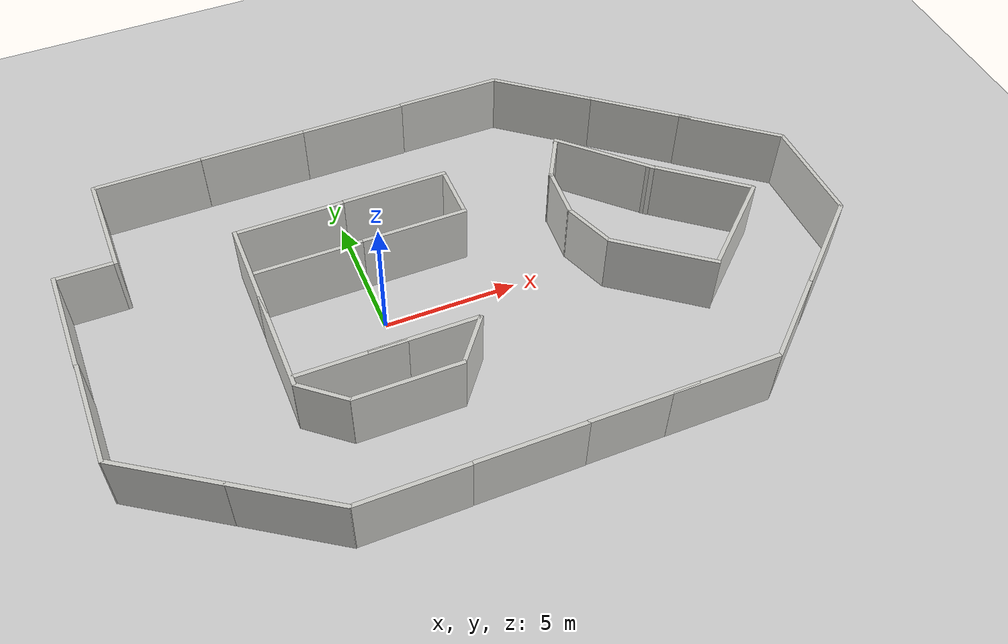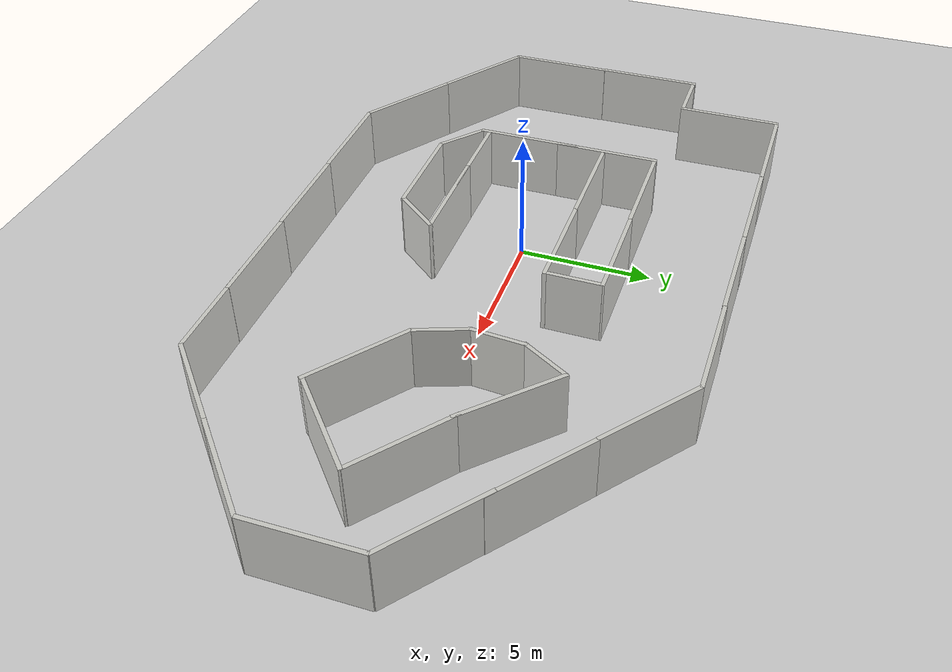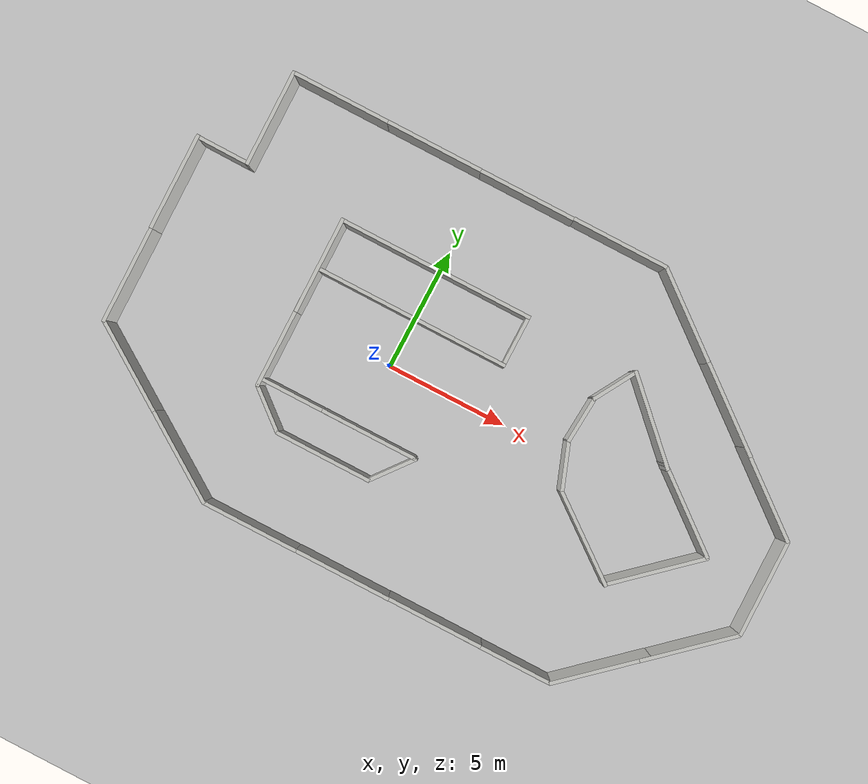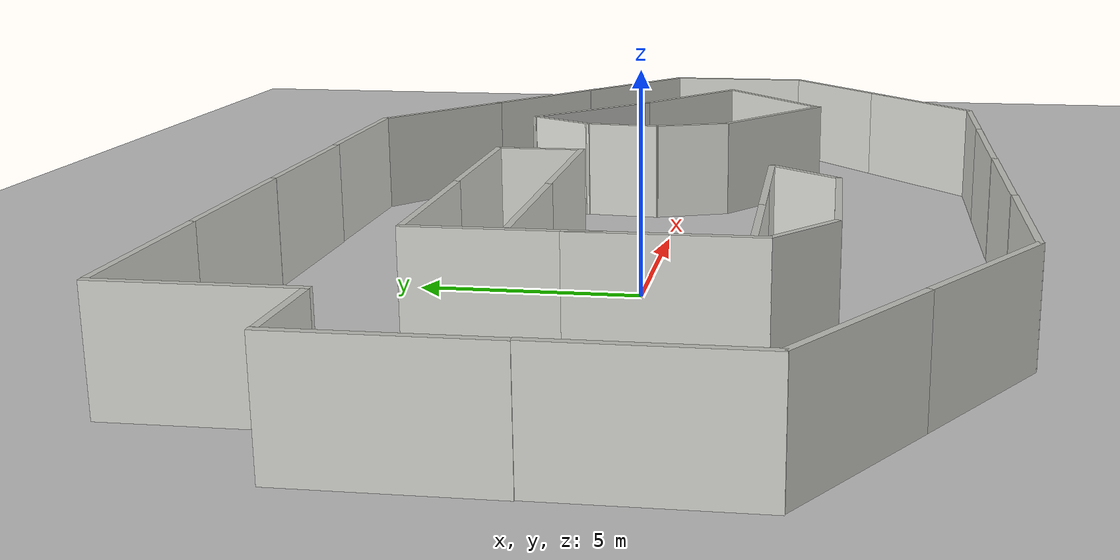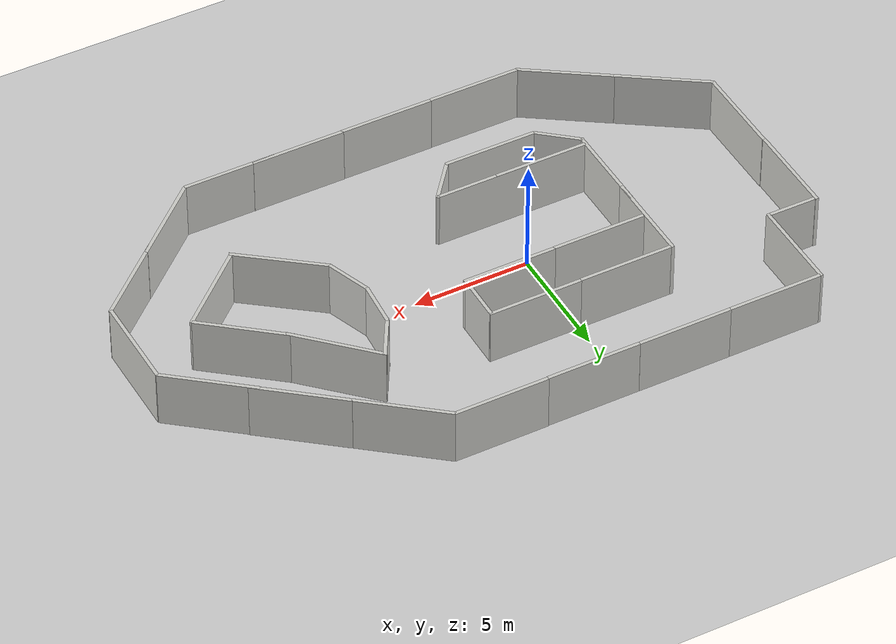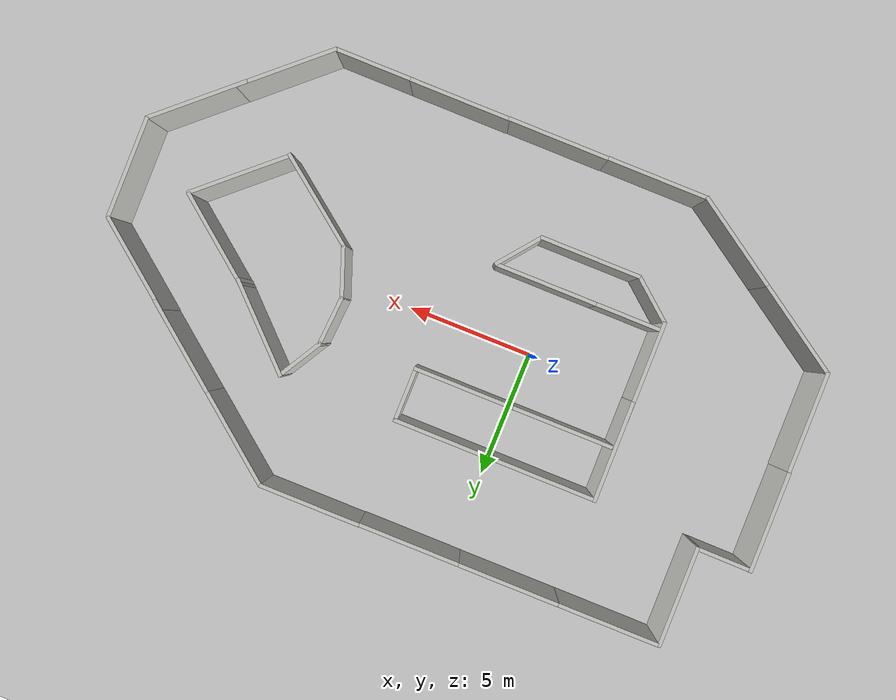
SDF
<sdf version="1.6">
 <world name="default">
  <light name="sun" type="directional">
   <pose>0 0 10 0 -0 0</pose>
   <diffuse>0.8 0.8 0.8 1</diffuse>
   <specular>0.2 0.2 0.2 1</specular>
   <attenuation>
    <range>1000</range>
    <constant>0.9</constant>
    <linear>0.01</linear>
    <quadratic>0.001</quadratic>
   </attenuation>
   <direction>-0.5 0.1 -0.9</direction>
  </light>
  <model name="ground_plane">
   <static>1</static>
   <link name="link">
    <collision name="collision">
     <geometry><plane><normal>0 0 1</normal><size>100 100</size></plane></geometry>
     <surface><friction><ode><mu>100</mu><mu2>50</mu2></ode></friction></surface>
    </collision>
    <visual name="visual">
     <cast_shadows>0</cast_shadows>
     <geometry><plane><normal>0 0 1</normal><size>100 100</size></plane></geometry>
     <material>
      <script><uri>file://media/materials/scripts/gazebo.material</uri><name>Gazebo/Grey</name></script>
     </material>
    </visual>
   </link>
  </model>
  <gravity>0 0 -9.8</gravity>
  <magnetic_field>6e-06 2.3e-05 -4.2e-05</magnetic_field>
  <atmosphere type="adiabatic"/>
  <physics name="default_physics" default="0" type="ode">
   <max_step_size>0.001</max_step_size>
   <real_time_factor>1</real_time_factor>
   <real_time_update_rate>1000</real_time_update_rate>
  </physics>
  <scene><ambient>0.4 0.4 0.4 1</ambient><background>0.7 0.7 0.7 1</background><shadows>1</shadows></scene>
  <spherical_coordinates>
   <surface_model>EARTH_WGS84</surface_model>
   <latitude_deg>0</latitude_deg>
   <longitude_deg>0</longitude_deg>
   <elevation>0</elevation>
   <heading_deg>0</heading_deg>
  </spherical_coordinates>
  <model name="unit_wall">
   <link name="Wall_0">
    <collision name="Wall_0_Collision">
     <pose>0 0 1.25 0 -0 0</pose>
     <geometry><box><size>4 0.15 2.5</size></box></geometry>
    </collision>
    <visual name="Wall_0_Visual">
     <pose>0 0 1.25 0 -0 0</pose>
     <geometry><box><size>4 0.15 2.5</size></box></geometry>
     <material>
      <script><uri>file://media/materials/scripts/gazebo.material</uri><name>Gazebo/CeilingTiled</name></script>
      <ambient>1 1 1 1</ambient>
     </material>
    </visual>
   </link>
   <static>1</static>
   <pose>5.64604 8.21186 0 0 -0 0</pose>
  </model>
  <model name="unit_wall_0">
   <link name="Wall_0">
    <collision name="Wall_0_Collision">
     <pose>0 0 1.25 0 -0 0</pose>
     <geometry><box><size>4 0.15 2.5</size></box></geometry>
    </collision>
    <visual name="Wall_0_Visual">
     <pose>0 0 1.25 0 -0 0</pose>
     <geometry><box><size>4 0.15 2.5</size></box></geometry>
     <material>
      <script><uri>file://media/materials/scripts/gazebo.material</uri><name>Gazebo/CeilingTiled</name></script>
      <ambient>1 1 1 1</ambient>
     </material>
    </visual>
   </link>
   <static>1</static>
   <pose>1.67278 8.1913 0 0 -0 0</pose>
  </model>
  <model name="unit_wall_0_clone">
   <link name="Wall_0">
    <collision name="Wall_0_Collision">
     <pose>0 0 1.25 0 -0 0</pose>
     <geometry><box><size>4 0.15 2.5</size></box></geometry>
    </collision>
    <visual name="Wall_0_Visual">
     <pose>0 0 1.25 0 -0 0</pose>
     <geometry><box><size>4 0.15 2.5</size></box></geometry>
     <material>
      <script><uri>file://media/materials/scripts/gazebo.material</uri><name>Gazebo/CeilingTiled</name></script>
      <ambient>1 1 1 1</ambient>
     </material>
    </visual>
   </link>
   <static>1</static>
   <pose>-2.3258 8.19513 0 0 -0 0</pose>
  </model>
  <model name="unit_wall_1">
   <link name="Wall_0">
    <collision name="Wall_0_Collision">
     <pose>0 0 1.25 0 -0 0</pose>
     <geometry><box><size>4 0.15 2.5</size></box></geometry>
    </collision>
    <visual name="Wall_0_Visual">
     <pose>0 0 1.25 0 -0 0</pose>
     <geometry><box><size>4 0.15 2.5</size></box></geometry>
     <material>
      <script><uri>file://media/materials/scripts/gazebo.material</uri><name>Gazebo/CeilingTiled</name></script>
      <ambient>1 1 1 1</ambient>
     </material>
    </visual>
   </link>
   <static>1</static>
   <pose>-6.32846 8.19139 0 0 -0 0</pose>
  </model>
  <model name="unit_wall_clone">
   <link name="Wall_0">
    <collision name="Wall_0_Collision">
     <pose>0 0 1.25 0 -0 0</pose>
     <geometry><box><size>4 0.15 2.5</size></box></geometry>
    </collision>
    <visual name="Wall_0_Visual">
     <pose>0 0 1.25 0 -0 0</pose>
     <geometry><box><size>4 0.15 2.5</size></box></geometry>
     <material>
      <script><uri>file://media/materials/scripts/gazebo.material</uri><name>Gazebo/CeilingTiled</name></script>
      <ambient>1 1 1 1</ambient>
     </material>
    </visual>
   </link>
   <static>1</static>
   <pose>9.16367 6.98341 0 0 0 -0.671715</pose>
  </model>
  <model name="unit_wall_clone_0">
   <link name="Wall_0">
    <collision name="Wall_0_Collision">
     <pose>0 0 1.25 0 -0 0</pose>
     <geometry><box><size>4 0.15 2.5</size></box></geometry>
    </collision>
    <visual name="Wall_0_Visual">
     <pose>0 0 1.25 0 -0 0</pose>
     <geometry><box><size>4 0.15 2.5</size></box></geometry>
     <material>
      <script><uri>file://media/materials/scripts/gazebo.material</uri><name>Gazebo/CeilingTiled</name></script>
      <ambient>1 1 1 1</ambient>
     </material>
    </visual>
   </link>
   <static>1</static>
   <pose>-5.44527 -6.81309 0 0 0 -0.587974</pose>
  </model>
  <model name="unit_wall_clone_2">
   <link name="Wall_0">
    <collision name="Wall_0_Collision">
     <pose>0 0 1.25 0 -0 0</pose>
     <geometry><box><size>4 0.15 2.5</size></box></geometry>
    </collision>
    <visual name="Wall_0_Visual">
     <pose>0 0 1.25 0 -0 0</pose>
     <geometry><box><size>4 0.15 2.5</size></box></geometry>
     <material>
      <script><uri>file://media/materials/scripts/gazebo.material</uri><name>Gazebo/CeilingTiled</name></script>
      <ambient>1 1 1 1</ambient>
     </material>
    </visual>
   </link>
   <static>1</static>
   <pose>-1.84948 -7.89318 0 0 -0 0</pose>
  </model>
  <model name="unit_wall_clone_3">
   <link name="Wall_0">
    <collision name="Wall_0_Collision">
     <pose>0 0 1.25 0 -0 0</pose>
     <geometry><box><size>4 0.15 2.5</size></box></geometry>
    </collision>
    <visual name="Wall_0_Visual">
     <pose>0 0 1.25 0 -0 0</pose>
     <geometry><box><size>4 0.15 2.5</size></box></geometry>
     <material>
      <script><uri>file://media/materials/scripts/gazebo.material</uri><name>Gazebo/CeilingTiled</name></script>
      <ambient>1 1 1 1</ambient>
     </material>
    </visual>
   </link>
   <static>1</static>
   <pose>2.13251 -7.88073 0 0 -0 0</pose>
  </model>
  <model name="unit_wall_clone_4">
   <link name="Wall_0">
    <collision name="Wall_0_Collision">
     <pose>0 0 1.25 0 -0 0</pose>
     <geometry><box><size>4 0.15 2.5</size></box></geometry>
    </collision>
    <visual name="Wall_0_Visual">
     <pose>0 0 1.25 0 -0 0</pose>
     <geometry><box><size>4 0.15 2.5</size></box></geometry>
     <material>
      <script><uri>file://media/materials/scripts/gazebo.material</uri><name>Gazebo/CeilingTiled</name></script>
      <ambient>1 1 1 1</ambient>
     </material>
    </visual>
   </link>
   <static>1</static>
   <pose>6.0717 -7.86922 0 0 -0 0</pose>
  </model>
  <model name="unit_wall_clone_clone_0">
   <link name="Wall_0">
    <collision name="Wall_0_Collision">
     <pose>0 0 1.25 0 -0 0</pose>
     <geometry><box><size>4 0.15 2.5</size></box></geometry>
    </collision>
    <visual name="Wall_0_Visual">
     <pose>0 0 1.25 0 -0 0</pose>
     <geometry><box><size>4 0.15 2.5</size></box></geometry>
     <material>
      <script><uri>file://media/materials/scripts/gazebo.material</uri><name>Gazebo/CeilingTiled</name></script>
      <ambient>1 1 1 1</ambient>
     </material>
    </visual>
   </link>
   <static>1</static>
   <pose>-10.411 -1.57407 0 0 0 -1.56298</pose>
  </model>
  <model name="unit_wall_clone_0_clone">
   <link name="Wall_0">
    <collision name="Wall_0_Collision">
     <pose>0 0 1.25 0 -0 0</pose>
     <geometry><box><size>4 0.15 2.5</size></box></geometry>
    </collision>
    <visual name="Wall_0_Visual">
     <pose>0 0 1.25 0 -0 0</pose>
     <geometry><box><size>4 0.15 2.5</size></box></geometry>
     <material>
      <script><uri>file://media/materials/scripts/gazebo.material</uri><name>Gazebo/CeilingTiled</name></script>
      <ambient>1 1 1 1</ambient>
     </material>
    </visual>
   </link>
   <static>1</static>
   <pose>-2.02228 2.0236 0 0 -0 0</pose>
  </model>
  <model name="unit_wall_clone_0_clone_1">
   <link name="Wall_0">
    <collision name="Wall_0_Collision">
     <pose>0 0 1.25 0 -0 0</pose>
     <geometry><box><size>4 0.15 2.5</size></box></geometry>
    </collision>
    <visual name="Wall_0_Visual">
     <pose>0 0 1.25 0 -0 0</pose>
     <geometry><box><size>4 0.15 2.5</size></box></geometry>
     <material>
      <script><uri>file://media/materials/scripts/gazebo.material</uri><name>Gazebo/CeilingTiled</name></script>
      <ambient>1 1 1 1</ambient>
     </material>
    </visual>
   </link>
   <static>1</static>
   <pose>1.93083 4.09257 0 0 -0 0</pose>
  </model>
  <model name="unit_wall_clone_clone_clone_0">
   <link name="Wall_0">
    <collision name="Wall_0_Collision">
     <pose>0 0 1.25 0 -0 0</pose>
     <geometry><box><size>4 0.15 2.5</size></box></geometry>
    </collision>
    <visual name="Wall_0_Visual">
     <pose>0 0 1.25 0 -0 0</pose>
     <geometry><box><size>4 0.15 2.5</size></box></geometry>
     <material>
      <script><uri>file://media/materials/scripts/gazebo.material</uri><name>Gazebo/CeilingTiled</name></script>
      <ambient>1 1 1 1</ambient>
     </material>
    </visual>
   </link>
   <static>1</static>
   <pose>-8.34944 6.25105 0 0 0 -1.56298</pose>
  </model>
  <model name="unit_wall_clone_0_clone_clone">
   <link name="Wall_0">
    <collision name="Wall_0_Collision">
     <pose>0 0 1.25 0 -0 0</pose>
     <geometry><box><size>4 0.15 2.5</size></box></geometry>
    </collision>
    <visual name="Wall_0_Visual">
     <pose>0 0 1.25 0 -0 0</pose>
     <geometry><box><size>4 0.15 2.5</size></box></geometry>
     <material>
      <script><uri>file://media/materials/scripts/gazebo.material</uri><name>Gazebo/CeilingTiled</name></script>
      <ambient>1 1 1 1</ambient>
     </material>
    </visual>
   </link>
   <static>1</static>
   <pose>1.9371 2.03288 0 0 -0 0</pose>
  </model>
  <model name="unit_wall_clone_clone_clone_0_clone">
   <link name="Wall_0">
    <collision name="Wall_0_Collision">
     <pose>0 0 1.25 0 -0 0</pose>
     <geometry><box><size>4 0.15 2.5</size></box></geometry>
    </collision>
    <visual name="Wall_0_Visual">
     <pose>0 0 1.25 0 -0 0</pose>
     <geometry><box><size>4 0.15 2.5</size></box></geometry>
     <material>
      <script><uri>file://media/materials/scripts/gazebo.material</uri><name>Gazebo/CeilingTiled</name></script>
      <ambient>1 1 1 1</ambient>
     </material>
    </visual>
   </link>
   <static>1</static>
   <pose>-10.4641 2.41982 0 0 0 -1.56298</pose>
  </model>
  <model name="half_wall">
   <link name="Wall_0">
    <collision name="Wall_0_Collision">
     <pose>0 0 1.25 0 -0 0</pose>
     <geometry><box><size>2 0.15 2.5</size></box></geometry>
    </collision>
    <visual name="Wall_0_Visual">
     <pose>0 0 1.25 0 -0 0</pose>
     <geometry><box><size>2 0.15 2.5</size></box></geometry>
     <material>
      <script><uri>file://media/materials/scripts/gazebo.material</uri><name>Gazebo/CeilingTiled</name></script>
      <ambient>1 1 1 1</ambient>
     </material>
    </visual>
   </link>
   <static>1</static>
   <pose>3.86163 3.09853 0 0 0 -1.57326</pose>
  </model>
  <model name="unit_wall_clone_0_clone_1_clone">
   <link name="Wall_0">
    <collision name="Wall_0_Collision">
     <pose>0 0 1.25 0 -0 0</pose>
     <geometry><box><size>4 0.15 2.5</size></box></geometry>
    </collision>
    <visual name="Wall_0_Visual">
     <pose>0 0 1.25 0 -0 0</pose>
     <geometry><box><size>4 0.15 2.5</size></box></geometry>
     <material>
      <script><uri>file://media/materials/scripts/gazebo.material</uri><name>Gazebo/CeilingTiled</name></script>
      <ambient>1 1 1 1</ambient>
     </material>
    </visual>
   </link>
   <static>1</static>
   <pose>-2.06538 4.07712 0 0 -0 0</pose>
  </model>
  <model name="unit_wall_clone_0_clone_1_clone_0">
   <link name="Wall_0">
    <collision name="Wall_0_Collision">
     <pose>0 0 1.25 0 -0 0</pose>
     <geometry><box><size>4 0.15 2.5</size></box></geometry>
    </collision>
    <visual name="Wall_0_Visual">
     <pose>0 0 1.25 0 -0 0</pose>
     <geometry><box><size>4 0.15 2.5</size></box></geometry>
     <material>
      <script><uri>file://media/materials/scripts/gazebo.material</uri><name>Gazebo/CeilingTiled</name></script>
      <ambient>1 1 1 1</ambient>
     </material>
    </visual>
   </link>
   <static>1</static>
   <pose>-0.604853 -4.23646 0 0 -0 0</pose>
  </model>
  <model name="unit_wall_clone_clone_clone_0_clone_clone">
   <link name="Wall_0">
    <collision name="Wall_0_Collision">
     <pose>0 0 1.25 0 -0 0</pose>
     <geometry><box><size>4 0.15 2.5</size></box></geometry>
    </collision>
    <visual name="Wall_0_Visual">
     <pose>0 0 1.25 0 -0 0</pose>
     <geometry><box><size>4 0.15 2.5</size></box></geometry>
     <material>
      <script><uri>file://media/materials/scripts/gazebo.material</uri><name>Gazebo/CeilingTiled</name></script>
      <ambient>1 1 1 1</ambient>
     </material>
    </visual>
   </link>
   <static>1</static>
   <pose>-4.1099 2.15428 0 0 0 -1.56298</pose>
  </model>
  <model name="unit_wall_clone_clone_clone_0_clone_clone_0">
   <link name="Wall_0">
    <collision name="Wall_0_Collision">
     <pose>0 0 1.25 0 -0 0</pose>
     <geometry><box><size>4 0.15 2.5</size></box></geometry>
    </collision>
    <visual name="Wall_0_Visual">
     <pose>0 0 1.25 0 -0 0</pose>
     <geometry><box><size>4 0.15 2.5</size></box></geometry>
     <material>
      <script><uri>file://media/materials/scripts/gazebo.material</uri><name>Gazebo/CeilingTiled</name></script>
      <ambient>1 1 1 1</ambient>
     </material>
    </visual>
   </link>
   <static>1</static>
   <pose>-4.09249 -1.03233 0 0 0 -1.56298</pose>
  </model>
  <model name="half_wall_clone">
   <link name="Wall_0">
    <collision name="Wall_0_Collision">
     <pose>0 0 1.25 0 -0 0</pose>
     <geometry><box><size>2 0.15 2.5</size></box></geometry>
    </collision>
    <visual name="Wall_0_Visual">
     <pose>0 0 1.25 0 -0 0</pose>
     <geometry><box><size>2 0.15 2.5</size></box></geometry>
     <material>
      <script><uri>file://media/materials/scripts/gazebo.material</uri><name>Gazebo/CeilingTiled</name></script>
      <ambient>1 1 1 1</ambient>
     </material>
    </visual>
   </link>
   <static>1</static>
   <pose>-3.33429 -3.60828 0 0 0 -0.692176</pose>
  </model>
  <model name="half_wall_clone_clone">
   <link name="Wall_0">
    <collision name="Wall_0_Collision">
     <pose>0 0 1.25 0 -0 0</pose>
     <geometry><box><size>2 0.15 2.5</size></box></geometry>
    </collision>
    <visual name="Wall_0_Visual">
     <pose>0 0 1.25 0 -0 0</pose>
     <geometry><box><size>2 0.15 2.5</size></box></geometry>
     <material>
      <script><uri>file://media/materials/scripts/gazebo.material</uri><name>Gazebo/CeilingTiled</name></script>
      <ambient>1 1 1 1</ambient>
     </material>
    </visual>
   </link>
   <static>1</static>
   <pose>1.96763 -3.44302 0 0 0 -2.24087</pose>
  </model>
  <model name="unit_wall_clone_0_clone_clone_0">
   <link name="Wall_0">
    <collision name="Wall_0_Collision">
     <pose>0 0 1.25 0 -0 0</pose>
     <geometry><box><size>4 0.15 2.5</size></box></geometry>
    </collision>
    <visual name="Wall_0_Visual">
     <pose>0 0 1.25 0 -0 0</pose>
     <geometry><box><size>4 0.15 2.5</size></box></geometry>
     <material>
      <script><uri>file://media/materials/scripts/gazebo.material</uri><name>Gazebo/CeilingTiled</name></script>
      <ambient>1 1 1 1</ambient>
     </material>
    </visual>
   </link>
   <static>1</static>
   <pose>0.546951 -2.68975 0 0 -0 0</pose>
  </model>
  <model name="unit_wall_clone_0_clone_clone_1">
   <link name="Wall_0">
    <collision name="Wall_0_Collision">
     <pose>0 0 1.25 0 -0 0</pose>
     <geometry><box><size>4 0.15 2.5</size></box></geometry>
    </collision>
    <visual name="Wall_0_Visual">
     <pose>0 0 1.25 0 -0 0</pose>
     <geometry><box><size>4 0.15 2.5</size></box></geometry>
     <material>
      <script><uri>file://media/materials/scripts/gazebo.material</uri><name>Gazebo/CeilingTiled</name></script>
      <ambient>1 1 1 1</ambient>
     </material>
    </visual>
   </link>
   <static>1</static>
   <pose>-2.05579 -2.69341 0 0 -0 0</pose>
  </model>
  <model name="unit_wall_clone_clone_1">
   <link name="Wall_0">
    <collision name="Wall_0_Collision">
     <pose>0 0 1.25 0 -0 0</pose>
     <geometry><box><size>4 0.15 2.5</size></box></geometry>
    </collision>
    <visual name="Wall_0_Visual">
     <pose>0 0 1.25 0 -0 0</pose>
     <geometry><box><size>4 0.15 2.5</size></box></geometry>
     <material>
      <script><uri>file://media/materials/scripts/gazebo.material</uri><name>Gazebo/CeilingTiled</name></script>
      <ambient>1 1 1 1</ambient>
     </material>
    </visual>
   </link>
   <static>1</static>
   <pose>12.2572 4.5301 0 0 0 -0.671715</pose>
  </model>
  <model name="unit_wall_clone_clone_2">
   <link name="Wall_0">
    <collision name="Wall_0_Collision">
     <pose>0 0 1.25 0 -0 0</pose>
     <geometry><box><size>4 0.15 2.5</size></box></geometry>
    </collision>
    <visual name="Wall_0_Visual">
     <pose>0 0 1.25 0 -0 0</pose>
     <geometry><box><size>4 0.15 2.5</size></box></geometry>
     <material>
      <script><uri>file://media/materials/scripts/gazebo.material</uri><name>Gazebo/CeilingTiled</name></script>
      <ambient>1 1 1 1</ambient>
     </material>
    </visual>
   </link>
   <static>1</static>
   <pose>15.0247 2.30888 0 0 0 -0.671715</pose>
  </model>
  <model name="unit_wall_clone_clone_1_clone">
   <link name="Wall_0">
    <collision name="Wall_0_Collision">
     <pose>0 0 1.25 0 -0 0</pose>
     <geometry><box><size>4 0.15 2.5</size></box></geometry>
    </collision>
    <visual name="Wall_0_Visual">
     <pose>0 0 1.25 0 -0 0</pose>
     <geometry><box><size>4 0.15 2.5</size></box></geometry>
     <material>
      <script><uri>file://media/materials/scripts/gazebo.material</uri><name>Gazebo/CeilingTiled</name></script>
      <ambient>1 1 1 1</ambient>
     </material>
    </visual>
   </link>
   <static>1</static>
   <pose>9.83822 2.78514 0 0 0 -0.774534</pose>
  </model>
  <model name="unit_wall_clone_clone_1_clone_0">
   <link name="Wall_0">
    <collision name="Wall_0_Collision">
     <pose>0 0 1.25 0 -0 0</pose>
     <geometry><box><size>4 0.15 2.5</size></box></geometry>
    </collision>
    <visual name="Wall_0_Visual">
     <pose>0 0 1.25 0 -0 0</pose>
     <geometry><box><size>4 0.15 2.5</size></box></geometry>
     <material>
      <script><uri>file://media/materials/scripts/gazebo.material</uri><name>Gazebo/CeilingTiled</name></script>
      <ambient>1 1 1 1</ambient>
     </material>
    </visual>
   </link>
   <static>1</static>
   <pose>12.5877 0.361058 0 0 0 -0.671715</pose>
  </model>
  <model name="unit_wall_clone_clone_0_clone_0">
   <link name="Wall_0">
    <collision name="Wall_0_Collision">
     <pose>0 0 1.25 0 -0 0</pose>
     <geometry><box><size>4 0.15 2.5</size></box></geometry>
    </collision>
    <visual name="Wall_0_Visual">
     <pose>0 0 1.25 0 -0 0</pose>
     <geometry><box><size>4 0.15 2.5</size></box></geometry>
     <material>
      <script><uri>file://media/materials/scripts/gazebo.material</uri><name>Gazebo/CeilingTiled</name></script>
      <ambient>1 1 1 1</ambient>
     </material>
    </visual>
   </link>
   <static>1</static>
   <pose>16.5899 -0.912637 0 0 0 -1.56298</pose>
  </model>
  <model name="unit_wall_clone_clone_0_clone_clone">
   <link name="Wall_0">
    <collision name="Wall_0_Collision">
     <pose>0 0 1.25 0 -0 0</pose>
     <geometry><box><size>4 0.15 2.5</size></box></geometry>
    </collision>
    <visual name="Wall_0_Visual">
     <pose>0 0 1.25 0 -0 0</pose>
     <geometry><box><size>4 0.15 2.5</size></box></geometry>
     <material>
      <script><uri>file://media/materials/scripts/gazebo.material</uri><name>Gazebo/CeilingTiled</name></script>
      <ambient>1 1 1 1</ambient>
     </material>
    </visual>
   </link>
   <static>1</static>
   <pose>15.1524 -4.19879 0 0 0 -2.4108</pose>
  </model>
  <model name="unit_wall_clone_clone_0_clone_clone_0">
   <link name="Wall_0">
    <collision name="Wall_0_Collision">
     <pose>0 0 1.25 0 -0 0</pose>
     <geometry><box><size>4 0.15 2.5</size></box></geometry>
    </collision>
    <visual name="Wall_0_Visual">
     <pose>0 0 1.25 0 -0 0</pose>
     <geometry><box><size>4 0.15 2.5</size></box></geometry>
     <material>
      <script><uri>file://media/materials/scripts/gazebo.material</uri><name>Gazebo/CeilingTiled</name></script>
      <ambient>1 1 1 1</ambient>
     </material>
    </visual>
   </link>
   <static>1</static>
   <pose>12.509 -6.56101 0 0 0 -2.4108</pose>
  </model>
  <model name="unit_wall_clone_4_clone">
   <link name="Wall_0">
    <collision name="Wall_0_Collision">
     <pose>0 0 1.25 0 -0 0</pose>
     <geometry><box><size>4 0.15 2.5</size></box></geometry>
    </collision>
    <visual name="Wall_0_Visual">
     <pose>0 0 1.25 0 -0 0</pose>
     <geometry><box><size>4 0.15 2.5</size></box></geometry>
     <material>
      <script><uri>file://media/materials/scripts/gazebo.material</uri><name>Gazebo/CeilingTiled</name></script>
      <ambient>1 1 1 1</ambient>
     </material>
    </visual>
   </link>
   <static>1</static>
   <pose>9.06179 -7.87335 0 0 -0 0</pose>
  </model>
  <model name="unit_wall_clone_0_clone_0">
   <link name="Wall_0">
    <collision name="Wall_0_Collision">
     <pose>0 0 1.25 0 -0 0</pose>
     <geometry><box><size>4 0.15 2.5</size></box></geometry>
    </collision>
    <visual name="Wall_0_Visual">
     <pose>0 0 1.25 0 -0 0</pose>
     <geometry><box><size>4 0.15 2.5</size></box></geometry>
     <material>
      <script><uri>file://media/materials/scripts/gazebo.material</uri><name>Gazebo/CeilingTiled</name></script>
      <ambient>1 1 1 1</ambient>
     </material>
    </visual>
   </link>
   <static>1</static>
   <pose>-8.73029 -4.62678 0 0 0 -0.587974</pose>
  </model>
  <model name="half_wall_clone_0">
   <link name="Wall_0">
    <collision name="Wall_0_Collision">
     <pose>0 0 1.25 0 -0 0</pose>
     <geometry><box><size>2 0.15 2.5</size></box></geometry>
    </collision>
    <visual name="Wall_0_Visual">
     <pose>0 0 1.25 0 -0 0</pose>
     <geometry><box><size>2 0.15 2.5</size></box></geometry>
     <material>
      <script><uri>file://media/materials/scripts/gazebo.material</uri><name>Gazebo/CeilingTiled</name></script>
      <ambient>1 1 1 1</ambient>
     </material>
    </visual>
   </link>
   <static>1</static>
   <pose>-9.39974 4.32738 0 0 -0 3.13455</pose>
  </model>
  <model name="unit_wall_clone_clone_0_clone_clone_clone">
   <link name="Wall_0">
    <collision name="Wall_0_Collision">
     <pose>0 0 1.25 0 -0 0</pose>
     <geometry><box><size>4 0.15 2.5</size></box></geometry>
    </collision>
    <visual name="Wall_0_Visual">
     <pose>0 0 1.25 0 -0 0</pose>
     <geometry><box><size>4 0.15 2.5</size></box></geometry>
     <material>
      <script><uri>file://media/materials/scripts/gazebo.material</uri><name>Gazebo/CeilingTiled</name></script>
      <ambient>1 1 1 1</ambient>
     </material>
    </visual>
   </link>
   <static>1</static>
   <pose>12.6949 -2.18133 0 0 0 -2.4108</pose>
  </model>
  <model name="unit_wall_clone_4_clone_clone">
   <link name="Wall_0">
    <collision name="Wall_0_Collision">
     <pose>0 0 1.25 0 -0 0</pose>
     <geometry><box><size>4 0.15 2.5</size></box></geometry>
    </collision>
    <visual name="Wall_0_Visual">
     <pose>0 0 1.25 0 -0 0</pose>
     <geometry><box><size>4 0.15 2.5</size></box></geometry>
     <material>
      <script><uri>file://media/materials/scripts/gazebo.material</uri><name>Gazebo/CeilingTiled</name></script>
      <ambient>1 1 1 1</ambient>
     </material>
    </visual>
   </link>
   <static>1</static>
   <pose>9.63744 -2.40624 0 0 0 -0.652522</pose>
  </model>
  <model name="half_wall_clone_1">
   <link name="Wall_0">
    <collision name="Wall_0_Collision">
     <pose>0 0 1.25 0 -0 0</pose>
     <geometry><box><size>2 0.15 2.5</size></box></geometry>
    </collision>
    <visual name="Wall_0_Visual">
     <pose>0 0 1.25 0 -0 0</pose>
     <geometry><box><size>2 0.15 2.5</size></box></geometry>
     <material>
      <script><uri>file://media/materials/scripts/gazebo.material</uri><name>Gazebo/CeilingTiled</name></script>
      <ambient>1 1 1 1</ambient>
     </material>
    </visual>
   </link>
   <static>1</static>
   <pose>7.98599 3.31495 0 0 0 -2.09755</pose>
  </model>
  <model name="half_wall_clone_1_clone">
   <link name="Wall_0">
    <collision name="Wall_0_Collision">
     <pose>0 0 1.25 0 -0 0</pose>
     <geometry><box><size>2 0.15 2.5</size></box></geometry>
    </collision>
    <visual name="Wall_0_Visual">
     <pose>0 0 1.25 0 -0 0</pose>
     <geometry><box><size>2 0.15 2.5</size></box></geometry>
     <material>
      <script><uri>file://media/materials/scripts/gazebo.material</uri><name>Gazebo/CeilingTiled</name></script>
      <ambient>1 1 1 1</ambient>
     </material>
    </visual>
   </link>
   <static>1</static>
   <pose>7.46425 1.58128 0 0 0 -1.63933</pose>
  </model>
  <model name="half_wall_clone_1_clone_clone">
   <link name="Wall_0">
    <collision name="Wall_0_Collision">
     <pose>0 0 1.25 0 -0 0</pose>
     <geometry><box><size>2 0.15 2.5</size></box></geometry>
    </collision>
    <visual name="Wall_0_Visual">
     <pose>0 0 1.25 0 -0 0</pose>
     <geometry><box><size>2 0.15 2.5</size></box></geometry>
     <material>
      <script><uri>file://media/materials/scripts/gazebo.material</uri><name>Gazebo/CeilingTiled</name></script>
      <ambient>1 1 1 1</ambient>
     </material>
    </visual>
   </link>
   <static>1</static>
   <pose>7.73045 -0.282291 0 0 0 -1.21965</pose>
  </model>
 </world>
</sdf>
